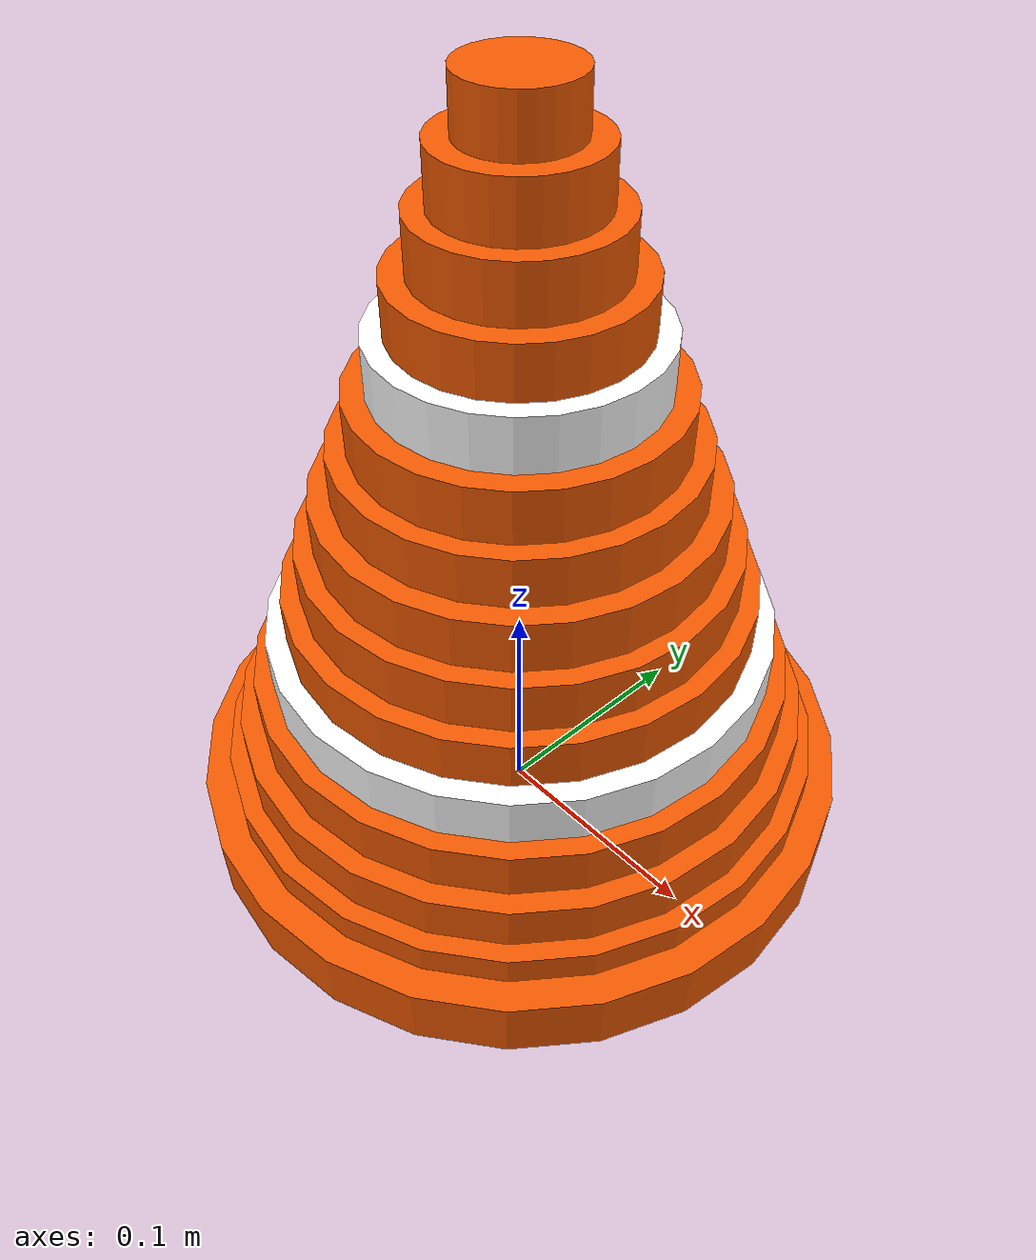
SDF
<?xml version="1.0"?>
<sdf version="1.6">
  <model name="traffic_cone">
    <static>true</static>
    <link name="link">

      <!-- ── Collision ──────────────────────────────────────────────────── -->
      <collision name="col">
        <pose>0 0 0.1625 0 0 0</pose>
        <geometry>
          <cylinder><radius>0.085</radius><length>0.325</length></cylinder>
        </geometry>
      </collision>

      <!-- ── Base plate ────────────────────────────────────────────────── -->
      <visual name="base">
        <pose>0 0 0.015 0 0 0</pose>
        <geometry><cylinder><radius>0.145</radius><length>0.030</length></cylinder></geometry>
        <material><ambient>0.95 0.35 0.0 1</ambient><diffuse>0.95 0.35 0.0 1</diffuse></material>
      </visual>

      <!-- ── Cone body – 15 sections ───────────────────────────────────── -->
      <!-- i=0  z=0.011  r=0.141  orange -->
      <visual name="s00">
        <pose>0 0 0.011 0 0 0</pose>
        <geometry><cylinder><radius>0.141</radius><length>0.022</length></cylinder></geometry>
        <material><ambient>0.95 0.35 0.0 1</ambient><diffuse>0.95 0.35 0.0 1</diffuse></material>
      </visual>

      <!-- i=1  z=0.033  r=0.132  orange -->
      <visual name="s01">
        <pose>0 0 0.033 0 0 0</pose>
        <geometry><cylinder><radius>0.132</radius><length>0.022</length></cylinder></geometry>
        <material><ambient>0.95 0.35 0.0 1</ambient><diffuse>0.95 0.35 0.0 1</diffuse></material>
      </visual>

      <!-- i=2  z=0.054  r=0.124  orange -->
      <visual name="s02">
        <pose>0 0 0.054 0 0 0</pose>
        <geometry><cylinder><radius>0.124</radius><length>0.022</length></cylinder></geometry>
        <material><ambient>0.95 0.35 0.0 1</ambient><diffuse>0.95 0.35 0.0 1</diffuse></material>
      </visual>

      <!-- i=3  z=0.076  r=0.115  orange -->
      <visual name="s03">
        <pose>0 0 0.076 0 0 0</pose>
        <geometry><cylinder><radius>0.115</radius><length>0.022</length></cylinder></geometry>
        <material><ambient>0.95 0.35 0.0 1</ambient><diffuse>0.95 0.35 0.0 1</diffuse></material>
      </visual>

      <!-- i=4  z=0.098  r=0.107  WHITE stripe 1 -->
      <visual name="s04">
        <pose>0 0 0.098 0 0 0</pose>
        <geometry><cylinder><radius>0.107</radius><length>0.022</length></cylinder></geometry>
        <material><ambient>1.0 1.0 1.0 1</ambient><diffuse>1.0 1.0 1.0 1</diffuse></material>
      </visual>

      <!-- i=5  z=0.119  r=0.098  orange -->
      <visual name="s05">
        <pose>0 0 0.119 0 0 0</pose>
        <geometry><cylinder><radius>0.098</radius><length>0.022</length></cylinder></geometry>
        <material><ambient>0.95 0.35 0.0 1</ambient><diffuse>0.95 0.35 0.0 1</diffuse></material>
      </visual>

      <!-- i=6  z=0.141  r=0.090  orange -->
      <visual name="s06">
        <pose>0 0 0.141 0 0 0</pose>
        <geometry><cylinder><radius>0.090</radius><length>0.022</length></cylinder></geometry>
        <material><ambient>0.95 0.35 0.0 1</ambient><diffuse>0.95 0.35 0.0 1</diffuse></material>
      </visual>

      <!-- i=7  z=0.163  r=0.082  orange -->
      <visual name="s07">
        <pose>0 0 0.163 0 0 0</pose>
        <geometry><cylinder><radius>0.082</radius><length>0.022</length></cylinder></geometry>
        <material><ambient>0.95 0.35 0.0 1</ambient><diffuse>0.95 0.35 0.0 1</diffuse></material>
      </visual>

      <!-- i=8  z=0.184  r=0.073  orange -->
      <visual name="s08">
        <pose>0 0 0.184 0 0 0</pose>
        <geometry><cylinder><radius>0.073</radius><length>0.022</length></cylinder></geometry>
        <material><ambient>0.95 0.35 0.0 1</ambient><diffuse>0.95 0.35 0.0 1</diffuse></material>
      </visual>

      <!-- i=9  z=0.206  r=0.065  orange -->
      <visual name="s09">
        <pose>0 0 0.206 0 0 0</pose>
        <geometry><cylinder><radius>0.065</radius><length>0.022</length></cylinder></geometry>
        <material><ambient>0.95 0.35 0.0 1</ambient><diffuse>0.95 0.35 0.0 1</diffuse></material>
      </visual>

      <!-- i=10 z=0.228  r=0.056  WHITE stripe 2 -->
      <visual name="s10">
        <pose>0 0 0.228 0 0 0</pose>
        <geometry><cylinder><radius>0.056</radius><length>0.022</length></cylinder></geometry>
        <material><ambient>1.0 1.0 1.0 1</ambient><diffuse>1.0 1.0 1.0 1</diffuse></material>
      </visual>

      <!-- i=11 z=0.249  r=0.048  orange -->
      <visual name="s11">
        <pose>0 0 0.249 0 0 0</pose>
        <geometry><cylinder><radius>0.048</radius><length>0.022</length></cylinder></geometry>
        <material><ambient>0.95 0.35 0.0 1</ambient><diffuse>0.95 0.35 0.0 1</diffuse></material>
      </visual>

      <!-- i=12 z=0.271  r=0.039  orange -->
      <visual name="s12">
        <pose>0 0 0.271 0 0 0</pose>
        <geometry><cylinder><radius>0.039</radius><length>0.022</length></cylinder></geometry>
        <material><ambient>0.95 0.35 0.0 1</ambient><diffuse>0.95 0.35 0.0 1</diffuse></material>
      </visual>

      <!-- i=13 z=0.293  r=0.031  orange -->
      <visual name="s13">
        <pose>0 0 0.293 0 0 0</pose>
        <geometry><cylinder><radius>0.031</radius><length>0.022</length></cylinder></geometry>
        <material><ambient>0.95 0.35 0.0 1</ambient><diffuse>0.95 0.35 0.0 1</diffuse></material>
      </visual>

      <!-- i=14 z=0.314  r=0.022  orange (tip) -->
      <visual name="s14">
        <pose>0 0 0.314 0 0 0</pose>
        <geometry><cylinder><radius>0.022</radius><length>0.022</length></cylinder></geometry>
        <material><ambient>0.95 0.35 0.0 1</ambient><diffuse>0.95 0.35 0.0 1</diffuse></material>
      </visual>

    </link>
  </model>
</sdf>
